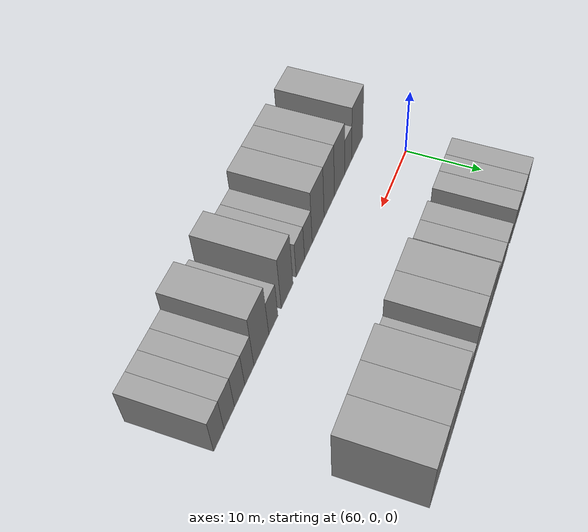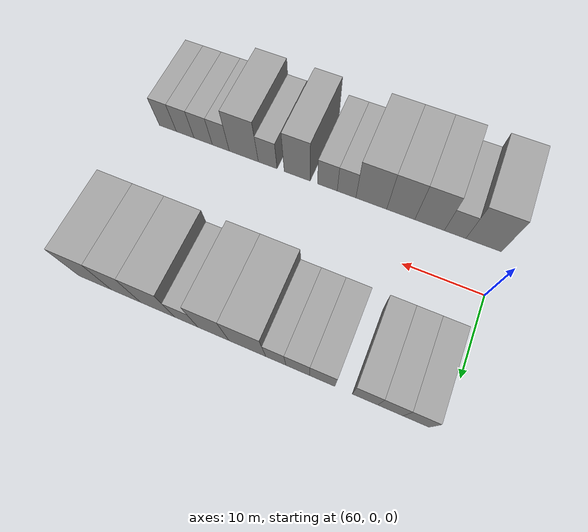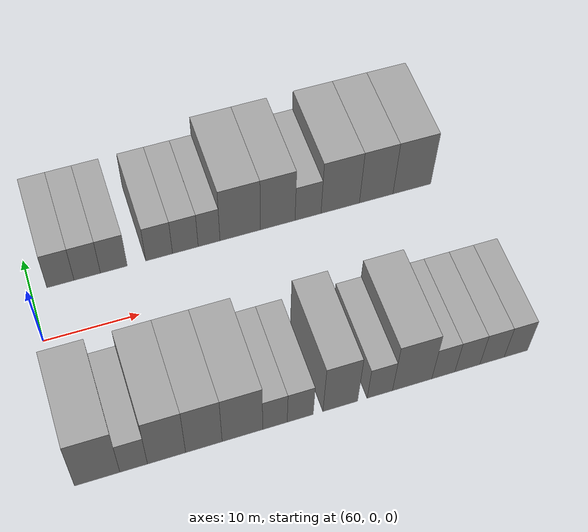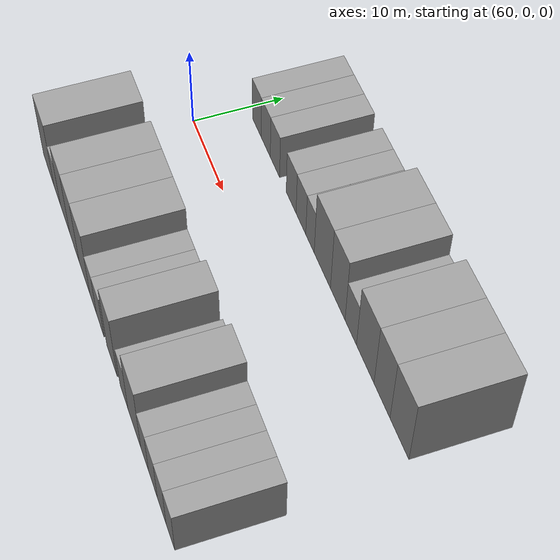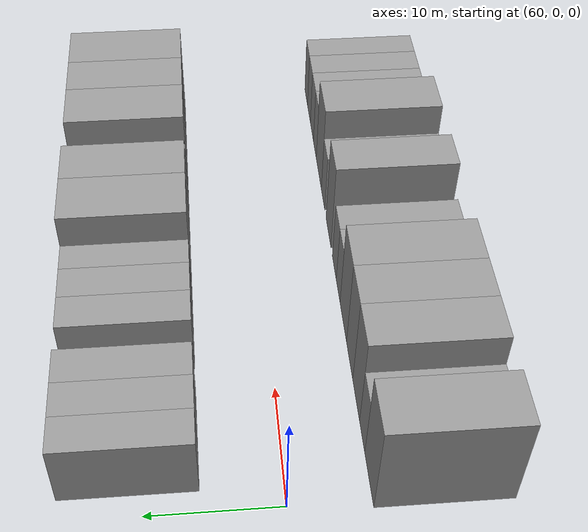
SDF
<sdf version="1.6">
 <world name="default">
  <model name="building_14">
   <static>1</static>
   <pose>63.1198 11.0000 0 0.000000 0.000000 1.570796</pose>
   <link name="link">
    <pose>0 0 3.00 0 0 0</pose>
    <collision name="collision"><geometry><box><size>10.0000 2.8842 6.0000</size></box></geometry></collision>
    <visual name="visual">
     <cast_shadows>0</cast_shadows>
     <geometry><box><size>10.0000 2.8842 6.0000</size></box></geometry>
     <material>
      <script>
       <uri>model://grey_wall/materials/scripts</uri>
       <uri>model://grey_wall/materials/textures</uri>
       <name>vrc/grey_wall</name>
      </script>
     </material>
    </visual>
   </link>
  </model>
  <model name="building_15">
   <static>1</static>
   <pose>65.9718 11.0000 0 0.000000 0.000000 1.570796</pose>
   <link name="link">
    <pose>0 0 3.00 0 0 0</pose>
    <collision name="collision"><geometry><box><size>10.0000 2.8198 6.0000</size></box></geometry></collision>
    <visual name="visual">
     <cast_shadows>0</cast_shadows>
     <geometry><box><size>10.0000 2.8198 6.0000</size></box></geometry>
     <material>
      <script>
       <uri>model://grey_wall/materials/scripts</uri>
       <uri>model://grey_wall/materials/textures</uri>
       <name>vrc/grey_wall</name>
      </script>
     </material>
    </visual>
   </link>
  </model>
  <model name="building_16">
   <static>1</static>
   <pose>68.8249 11.0000 0 0.000000 0.000000 1.570796</pose>
   <link name="link">
    <pose>0 0 3.00 0 0 0</pose>
    <collision name="collision"><geometry><box><size>10.0000 2.8863 6.0000</size></box></geometry></collision>
    <visual name="visual">
     <cast_shadows>0</cast_shadows>
     <geometry><box><size>10.0000 2.8863 6.0000</size></box></geometry>
     <material>
      <script>
       <uri>model://grey_wall/materials/scripts</uri>
       <uri>model://grey_wall/materials/textures</uri>
       <name>vrc/grey_wall</name>
      </script>
     </material>
    </visual>
   </link>
  </model>
  <model name="building_17">
   <static>1</static>
   <pose>73.7291 11.0000 0 0.000000 0.000000 1.570796</pose>
   <link name="link">
    <pose>0 0 3.00 0 0 0</pose>
    <collision name="collision"><geometry><box><size>10.0000 2.9221 6.0000</size></box></geometry></collision>
    <visual name="visual">
     <cast_shadows>0</cast_shadows>
     <geometry><box><size>10.0000 2.9221 6.0000</size></box></geometry>
     <material>
      <script>
       <uri>model://grey_wall/materials/scripts</uri>
       <uri>model://grey_wall/materials/textures</uri>
       <name>vrc/grey_wall</name>
      </script>
     </material>
    </visual>
   </link>
  </model>
  <model name="building_18">
   <static>1</static>
   <pose>76.6007 11.0000 0 0.000000 0.000000 1.570796</pose>
   <link name="link">
    <pose>0 0 3.00 0 0 0</pose>
    <collision name="collision"><geometry><box><size>10.0000 2.8211 6.0000</size></box></geometry></collision>
    <visual name="visual">
     <cast_shadows>0</cast_shadows>
     <geometry><box><size>10.0000 2.8211 6.0000</size></box></geometry>
     <material>
      <script>
       <uri>model://grey_wall/materials/scripts</uri>
       <uri>model://grey_wall/materials/textures</uri>
       <name>vrc/grey_wall</name>
      </script>
     </material>
    </visual>
   </link>
  </model>
  <model name="building_19">
   <static>1</static>
   <pose>79.2155 11.0000 0 0.000000 0.000000 1.570796</pose>
   <link name="link">
    <pose>0 0 3.00 0 0 0</pose>
    <collision name="collision"><geometry><box><size>10.0000 2.4084 6.0000</size></box></geometry></collision>
    <visual name="visual">
     <cast_shadows>0</cast_shadows>
     <geometry><box><size>10.0000 2.4084 6.0000</size></box></geometry>
     <material>
      <script>
       <uri>model://grey_wall/materials/scripts</uri>
       <uri>model://grey_wall/materials/textures</uri>
       <name>vrc/grey_wall</name>
      </script>
     </material>
    </visual>
   </link>
  </model>
  <model name="building_20">
   <static>1</static>
   <pose>82.6691 11.0000 0 0.000000 0.000000 1.570796</pose>
   <link name="link">
    <pose>0 0 4.50 0 0 0</pose>
    <collision name="collision"><geometry><box><size>10.0000 4.4989 9.0000</size></box></geometry></collision>
    <visual name="visual">
     <cast_shadows>0</cast_shadows>
     <geometry><box><size>10.0000 4.4989 9.0000</size></box></geometry>
     <material>
      <script>
       <uri>model://grey_wall/materials/scripts</uri>
       <uri>model://grey_wall/materials/textures</uri>
       <name>vrc/grey_wall</name>
      </script>
     </material>
    </visual>
   </link>
  </model>
  <model name="building_21">
   <static>1</static>
   <pose>86.8722 11.0000 0 0.000000 0.000000 1.570796</pose>
   <link name="link">
    <pose>0 0 4.50 0 0 0</pose>
    <collision name="collision"><geometry><box><size>10.0000 3.9072 9.0000</size></box></geometry></collision>
    <visual name="visual">
     <cast_shadows>0</cast_shadows>
     <geometry><box><size>10.0000 3.9072 9.0000</size></box></geometry>
     <material>
      <script>
       <uri>model://grey_wall/materials/scripts</uri>
       <uri>model://grey_wall/materials/textures</uri>
       <name>vrc/grey_wall</name>
      </script>
     </material>
    </visual>
   </link>
  </model>
  <model name="building_22">
   <static>1</static>
   <pose>90.3051 11.0000 0 0.000000 0.000000 1.570796</pose>
   <link name="link">
    <pose>0 0 3.00 0 0 0</pose>
    <collision name="collision"><geometry><box><size>10.0000 2.9587 6.0000</size></box></geometry></collision>
    <visual name="visual">
     <cast_shadows>0</cast_shadows>
     <geometry><box><size>10.0000 2.9587 6.0000</size></box></geometry>
     <material>
      <script>
       <uri>model://grey_wall/materials/scripts</uri>
       <uri>model://grey_wall/materials/textures</uri>
       <name>vrc/grey_wall</name>
      </script>
     </material>
    </visual>
   </link>
  </model>
  <model name="building_23">
   <static>1</static>
   <pose>93.9879 11.0000 0 0.000000 0.000000 1.570796</pose>
   <link name="link">
    <pose>0 0 4.50 0 0 0</pose>
    <collision name="collision"><geometry><box><size>10.0000 4.4069 9.0000</size></box></geometry></collision>
    <visual name="visual">
     <cast_shadows>0</cast_shadows>
     <geometry><box><size>10.0000 4.4069 9.0000</size></box></geometry>
     <material>
      <script>
       <uri>model://grey_wall/materials/scripts</uri>
       <uri>model://grey_wall/materials/textures</uri>
       <name>vrc/grey_wall</name>
      </script>
     </material>
    </visual>
   </link>
  </model>
  <model name="building_24">
   <static>1</static>
   <pose>98.1364 11.0000 0 0.000000 0.000000 1.570796</pose>
   <link name="link">
    <pose>0 0 4.50 0 0 0</pose>
    <collision name="collision"><geometry><box><size>10.0000 3.8901 9.0000</size></box></geometry></collision>
    <visual name="visual">
     <cast_shadows>0</cast_shadows>
     <geometry><box><size>10.0000 3.8901 9.0000</size></box></geometry>
     <material>
      <script>
       <uri>model://grey_wall/materials/scripts</uri>
       <uri>model://grey_wall/materials/textures</uri>
       <name>vrc/grey_wall</name>
      </script>
     </material>
    </visual>
   </link>
  </model>
  <model name="building_25">
   <static>1</static>
   <pose>102.2956 11.0000 0 0.000000 0.000000 1.570796</pose>
   <link name="link">
    <pose>0 0 4.50 0 0 0</pose>
    <collision name="collision"><geometry><box><size>10.0000 4.4283 9.0000</size></box></geometry></collision>
    <visual name="visual">
     <cast_shadows>0</cast_shadows>
     <geometry><box><size>10.0000 4.4283 9.0000</size></box></geometry>
     <material>
      <script>
       <uri>model://grey_wall/materials/scripts</uri>
       <uri>model://grey_wall/materials/textures</uri>
       <name>vrc/grey_wall</name>
      </script>
     </material>
    </visual>
   </link>
  </model>
  <model name="building_66">
   <static>1</static>
   <pose>61.7003 -11.0000 0 0.000000 0.000000 1.570796</pose>
   <link name="link">
    <pose>0 0 4.50 0 0 0</pose>
    <collision name="collision"><geometry><box><size>10.0000 4.3989 9.0000</size></box></geometry></collision>
    <visual name="visual">
     <cast_shadows>0</cast_shadows>
     <geometry><box><size>10.0000 4.3989 9.0000</size></box></geometry>
     <material>
      <script>
       <uri>model://grey_wall/materials/scripts</uri>
       <uri>model://grey_wall/materials/textures</uri>
       <name>vrc/grey_wall</name>
      </script>
     </material>
    </visual>
   </link>
  </model>
  <model name="building_67">
   <static>1</static>
   <pose>65.2532 -11.0000 0 0.000000 0.000000 1.570796</pose>
   <link name="link">
    <pose>0 0 3.00 0 0 0</pose>
    <collision name="collision"><geometry><box><size>10.0000 2.7070 6.0000</size></box></geometry></collision>
    <visual name="visual">
     <cast_shadows>0</cast_shadows>
     <geometry><box><size>10.0000 2.7070 6.0000</size></box></geometry>
     <material>
      <script>
       <uri>model://grey_wall/materials/scripts</uri>
       <uri>model://grey_wall/materials/textures</uri>
       <name>vrc/grey_wall</name>
      </script>
     </material>
    </visual>
   </link>
  </model>
  <model name="building_68">
   <static>1</static>
   <pose>68.4910 -11.0000 0 0.000000 0.000000 1.570796</pose>
   <link name="link">
    <pose>0 0 4.50 0 0 0</pose>
    <collision name="collision"><geometry><box><size>10.0000 3.7685 9.0000</size></box></geometry></collision>
    <visual name="visual">
     <cast_shadows>0</cast_shadows>
     <geometry><box><size>10.0000 3.7685 9.0000</size></box></geometry>
     <material>
      <script>
       <uri>model://grey_wall/materials/scripts</uri>
       <uri>model://grey_wall/materials/textures</uri>
       <name>vrc/grey_wall</name>
      </script>
     </material>
    </visual>
   </link>
  </model>
  <model name="building_69">
   <static>1</static>
   <pose>72.1977 -11.0000 0 0.000000 0.000000 1.570796</pose>
   <link name="link">
    <pose>0 0 4.50 0 0 0</pose>
    <collision name="collision"><geometry><box><size>10.0000 3.6451 9.0000</size></box></geometry></collision>
    <visual name="visual">
     <cast_shadows>0</cast_shadows>
     <geometry><box><size>10.0000 3.6451 9.0000</size></box></geometry>
     <material>
      <script>
       <uri>model://grey_wall/materials/scripts</uri>
       <uri>model://grey_wall/materials/textures</uri>
       <name>vrc/grey_wall</name>
      </script>
     </material>
    </visual>
   </link>
  </model>
  <model name="building_70">
   <static>1</static>
   <pose>76.0608 -11.0000 0 0.000000 0.000000 1.570796</pose>
   <link name="link">
    <pose>0 0 4.50 0 0 0</pose>
    <collision name="collision"><geometry><box><size>10.0000 4.0811 9.0000</size></box></geometry></collision>
    <visual name="visual">
     <cast_shadows>0</cast_shadows>
     <geometry><box><size>10.0000 4.0811 9.0000</size></box></geometry>
     <material>
      <script>
       <uri>model://grey_wall/materials/scripts</uri>
       <uri>model://grey_wall/materials/textures</uri>
       <name>vrc/grey_wall</name>
      </script>
     </material>
    </visual>
   </link>
  </model>
  <model name="building_71">
   <static>1</static>
   <pose>79.3522 -11.0000 0 0.000000 0.000000 1.570796</pose>
   <link name="link">
    <pose>0 0 3.00 0 0 0</pose>
    <collision name="collision"><geometry><box><size>10.0000 2.5017 6.0000</size></box></geometry></collision>
    <visual name="visual">
     <cast_shadows>0</cast_shadows>
     <geometry><box><size>10.0000 2.5017 6.0000</size></box></geometry>
     <material>
      <script>
       <uri>model://grey_wall/materials/scripts</uri>
       <uri>model://grey_wall/materials/textures</uri>
       <name>vrc/grey_wall</name>
      </script>
     </material>
    </visual>
   </link>
  </model>
  <model name="building_72">
   <static>1</static>
   <pose>81.9416 -11.0000 0 0.000000 0.000000 1.570796</pose>
   <link name="link">
    <pose>0 0 3.00 0 0 0</pose>
    <collision name="collision"><geometry><box><size>10.0000 2.6772 6.0000</size></box></geometry></collision>
    <visual name="visual">
     <cast_shadows>0</cast_shadows>
     <geometry><box><size>10.0000 2.6772 6.0000</size></box></geometry>
     <material>
      <script>
       <uri>model://grey_wall/materials/scripts</uri>
       <uri>model://grey_wall/materials/textures</uri>
       <name>vrc/grey_wall</name>
      </script>
     </material>
    </visual>
   </link>
  </model>
  <model name="building_73">
   <static>1</static>
   <pose>86.0815 -11.0000 0 0.000000 0.000000 1.570796</pose>
   <link name="link">
    <pose>0 0 4.50 0 0 0</pose>
    <collision name="collision"><geometry><box><size>10.0000 3.6025 9.0000</size></box></geometry></collision>
    <visual name="visual">
     <cast_shadows>0</cast_shadows>
     <geometry><box><size>10.0000 3.6025 9.0000</size></box></geometry>
     <material>
      <script>
       <uri>model://grey_wall/materials/scripts</uri>
       <uri>model://grey_wall/materials/textures</uri>
       <name>vrc/grey_wall</name>
      </script>
     </material>
    </visual>
   </link>
  </model>
  <model name="building_74">
   <static>1</static>
   <pose>90.2096 -11.0000 0 0.000000 0.000000 1.570796</pose>
   <link name="link">
    <pose>0 0 3.00 0 0 0</pose>
    <collision name="collision"><geometry><box><size>10.0000 2.6537 6.0000</size></box></geometry></collision>
    <visual name="visual">
     <cast_shadows>0</cast_shadows>
     <geometry><box><size>10.0000 2.6537 6.0000</size></box></geometry>
     <material>
      <script>
       <uri>model://grey_wall/materials/scripts</uri>
       <uri>model://grey_wall/materials/textures</uri>
       <name>vrc/grey_wall</name>
      </script>
     </material>
    </visual>
   </link>
  </model>
  <model name="building_75">
   <static>1</static>
   <pose>93.6198 -11.0000 0 0.000000 0.000000 1.570796</pose>
   <link name="link">
    <pose>0 0 4.50 0 0 0</pose>
    <collision name="collision"><geometry><box><size>10.0000 4.1667 9.0000</size></box></geometry></collision>
    <visual name="visual">
     <cast_shadows>0</cast_shadows>
     <geometry><box><size>10.0000 4.1667 9.0000</size></box></geometry>
     <material>
      <script>
       <uri>model://grey_wall/materials/scripts</uri>
       <uri>model://grey_wall/materials/textures</uri>
       <name>vrc/grey_wall</name>
      </script>
     </material>
    </visual>
   </link>
  </model>
  <model name="building_76">
   <static>1</static>
   <pose>96.9354 -11.0000 0 0.000000 0.000000 1.570796</pose>
   <link name="link">
    <pose>0 0 3.00 0 0 0</pose>
    <collision name="collision"><geometry><box><size>10.0000 2.4645 6.0000</size></box></geometry></collision>
    <visual name="visual">
     <cast_shadows>0</cast_shadows>
     <geometry><box><size>10.0000 2.4645 6.0000</size></box></geometry>
     <material>
      <script>
       <uri>model://grey_wall/materials/scripts</uri>
       <uri>model://grey_wall/materials/textures</uri>
       <name>vrc/grey_wall</name>
      </script>
     </material>
    </visual>
   </link>
  </model>
  <model name="building_77">
   <static>1</static>
   <pose>99.5156 -11.0000 0 0.000000 0.000000 1.570796</pose>
   <link name="link">
    <pose>0 0 3.00 0 0 0</pose>
    <collision name="collision"><geometry><box><size>10.0000 2.6960 6.0000</size></box></geometry></collision>
    <visual name="visual">
     <cast_shadows>0</cast_shadows>
     <geometry><box><size>10.0000 2.6960 6.0000</size></box></geometry>
     <material>
      <script>
       <uri>model://grey_wall/materials/scripts</uri>
       <uri>model://grey_wall/materials/textures</uri>
       <name>vrc/grey_wall</name>
      </script>
     </material>
    </visual>
   </link>
  </model>
  <model name="building_78">
   <static>1</static>
   <pose>102.1844 -11.0000 0 0.000000 0.000000 1.570796</pose>
   <link name="link">
    <pose>0 0 3.00 0 0 0</pose>
    <collision name="collision"><geometry><box><size>10.0000 2.6415 6.0000</size></box></geometry></collision>
    <visual name="visual">
     <cast_shadows>0</cast_shadows>
     <geometry><box><size>10.0000 2.6415 6.0000</size></box></geometry>
     <material>
      <script>
       <uri>model://grey_wall/materials/scripts</uri>
       <uri>model://grey_wall/materials/textures</uri>
       <name>vrc/grey_wall</name>
      </script>
     </material>
    </visual>
   </link>
  </model>
  <model name="building_79">
   <static>1</static>
   <pose>104.7833 -11.0000 0 0.000000 0.000000 1.570796</pose>
   <link name="link">
    <pose>0 0 3.00 0 0 0</pose>
    <collision name="collision"><geometry><box><size>10.0000 2.5563 6.0000</size></box></geometry></collision>
    <visual name="visual">
     <cast_shadows>0</cast_shadows>
     <geometry><box><size>10.0000 2.5563 6.0000</size></box></geometry>
     <material>
      <script>
       <uri>model://grey_wall/materials/scripts</uri>
       <uri>model://grey_wall/materials/textures</uri>
       <name>vrc/grey_wall</name>
      </script>
     </material>
    </visual>
   </link>
  </model>
 </world>
</sdf>
